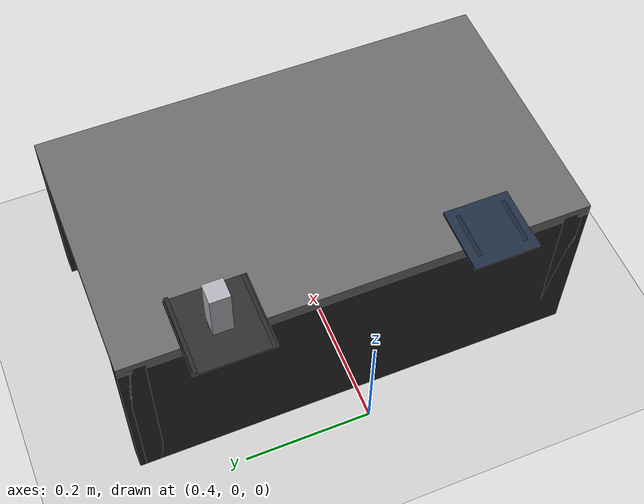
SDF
<?xml version="1.0" ?>
<sdf version="1.9">
  <world name="irb140_workcell">
    <gravity>0 0 -9.81</gravity>

    <plugin
      filename="gz-sim-physics-system"
      name="gz::sim::systems::Physics">
    </plugin>

    <plugin
      filename="gz-sim-user-commands-system"
      name="gz::sim::systems::UserCommands">
    </plugin>

    <plugin
      filename="gz-sim-scene-broadcaster-system"
      name="gz::sim::systems::SceneBroadcaster">
    </plugin>

    <light name="sun" type="directional">
      <cast_shadows>true</cast_shadows>
      <pose>0 0 10 0 0 0</pose>
      <diffuse>0.8 0.8 0.8 1</diffuse>
      <specular>0.2 0.2 0.2 1</specular>
      <direction>-0.5 0.1 -0.9</direction>
    </light>

    <model name="ground_plane">
      <static>true</static>
      <link name="link">
        <collision name="collision">
          <geometry>
            <plane>
              <normal>0 0 1</normal>
              <size>10 10</size>
            </plane>
          </geometry>
        </collision>

        <visual name="visual">
          <geometry>
            <plane>
              <normal>0 0 1</normal>
              <size>10 10</size>
            </plane>
          </geometry>
          <material>
            <ambient>0.8 0.8 0.8 1</ambient>
            <diffuse>0.8 0.8 0.8 1</diffuse>
          </material>
        </visual>
      </link>
    </model>

    <model name="workcell_table">
      <static>true</static>
      <pose>0.65 0.0 0.0 0 0 0</pose>

      <link name="table_link">
        <!-- Raised industrial shelf top.
             This collision is real in Gazebo and will be mirrored in the
             MoveIt planning scene as a simplified collision object. -->
        <collision name="shelf_top_collision">
          <pose>0 0 0.290 0 0 0</pose>
          <geometry>
            <box>
              <size>0.40 0.70 0.020</size>
            </box>
          </geometry>
        </collision>

        <visual name="shelf_top_visual">
          <pose>0 0 0.290 0 0 0</pose>
          <geometry>
            <box>
              <size>0.40 0.70 0.020</size>
            </box>
          </geometry>
          <material>
            <ambient>0.32 0.32 0.32 1</ambient>
            <diffuse>0.42 0.42 0.42 1</diffuse>
            <specular>0.18 0.18 0.18 1</specular>
          </material>
        </visual>

        <!-- Visual-only industrial support frame.
             These details make the table look like a workstation/shelf,
             but we do not add every rail as a collision object yet. -->
        <visual name="front_support_visual">
          <pose>0 -0.325 0.145 0 0 0</pose>
          <geometry>
            <box>
              <size>0.40 0.030 0.290</size>
            </box>
          </geometry>
          <material>
            <ambient>0.10 0.10 0.10 1</ambient>
            <diffuse>0.16 0.16 0.16 1</diffuse>
          </material>
        </visual>

        <visual name="back_support_visual">
          <pose>0 0.325 0.145 0 0 0</pose>
          <geometry>
            <box>
              <size>0.40 0.030 0.290</size>
            </box>
          </geometry>
          <material>
            <ambient>0.10 0.10 0.10 1</ambient>
            <diffuse>0.16 0.16 0.16 1</diffuse>
          </material>
        </visual>

        <visual name="left_support_visual">
          <pose>-0.185 0 0.145 0 0 0</pose>
          <geometry>
            <box>
              <size>0.030 0.70 0.290</size>
            </box>
          </geometry>
          <material>
            <ambient>0.10 0.10 0.10 1</ambient>
            <diffuse>0.16 0.16 0.16 1</diffuse>
          </material>
        </visual>

        <visual name="right_support_visual">
          <pose>0.185 0 0.145 0 0 0</pose>
          <geometry>
            <box>
              <size>0.030 0.70 0.290</size>
            </box>
          </geometry>
          <material>
            <ambient>0.10 0.10 0.10 1</ambient>
            <diffuse>0.16 0.16 0.16 1</diffuse>
          </material>
        </visual>
      </link>
    </model>

    <!-- Industrial input tray.
         Visual-only workcell detail. The planning scene still handles
         robot collision objects from the C++ application. -->
    <model name="input_tray_visual">
      <static>true</static>
      <pose>0.465 0.200 0.302 0 0 0</pose>

      <link name="tray_link">
        <visual name="tray_base_visual">
          <geometry>
            <box>
              <size>0.120 0.120 0.004</size>
            </box>
          </geometry>
          <material>
            <ambient>0.12 0.12 0.12 1</ambient>
            <diffuse>0.18 0.18 0.18 1</diffuse>
          </material>
        </visual>

        <visual name="tray_left_rail_visual">
          <pose>0 0.055 0.005 0 0 0</pose>
          <geometry>
            <box>
              <size>0.120 0.006 0.006</size>
            </box>
          </geometry>
          <material>
            <ambient>0.10 0.10 0.10 1</ambient>
            <diffuse>0.16 0.16 0.16 1</diffuse>
          </material>
        </visual>

        <visual name="tray_right_rail_visual">
          <pose>0 -0.055 0.0015 0 0 0</pose>
          <geometry>
            <box>
              <size>0.120 0.006 0.001</size>
            </box>
          </geometry>
          <material>
            <ambient>0.10 0.10 0.10 1</ambient>
            <diffuse>0.16 0.16 0.16 1</diffuse>
          </material>
        </visual>
      </link>
    </model>

    <!-- Stable visual workpiece only. No physical grasp/contact yet.
         The C++ app represents the carried object in the MoveIt planning scene. -->
    <model name="pick_box_visual">
      <static>true</static>
      <pose>0.465 0.200 0.345 0 0 0</pose>

      <link name="box_link">
        <visual name="workpiece_visual">
          <geometry>
            <box>
              <size>0.03 0.03 0.08</size>
            </box>
          </geometry>
          <material>
            <ambient>0.55 0.55 0.58 1</ambient>
            <diffuse>0.70 0.70 0.74 1</diffuse>
            <specular>0.25 0.25 0.25 1</specular>
          </material>
        </visual>
      </link>
    </model>

    <!-- Industrial fixture nest / process station.
         This replaces the simple green place marker visually, while keeping
         the same target area for the current pick-and-place logic. -->
    <model name="place_marker">
      <static>true</static>
      <pose>0.465 -0.200 0.302 0 0 0</pose>

      <link name="fixture_link">
        <visual name="fixture_base_visual">
          <geometry>
            <box>
              <size>0.100 0.100 0.004</size>
            </box>
          </geometry>
          <material>
            <ambient>0.08 0.12 0.18 1</ambient>
            <diffuse>0.12 0.18 0.26 1</diffuse>
            <specular>0.15 0.15 0.15 1</specular>
          </material>
        </visual>

<visual name="fixture_left_guide_visual">
          <pose>0 0.035 0.003 0 0 0</pose>
          <geometry>
            <box>
              <size>0.070 0.006 0.006</size>
            </box>
          </geometry>
          <material>
            <ambient>0.07 0.10 0.15 1</ambient>
            <diffuse>0.10 0.15 0.22 1</diffuse>
            <specular>0.15 0.15 0.15 1</specular>
          </material>
        </visual>

        <visual name="fixture_right_guide_visual">
          <pose>0 -0.035 0.003 0 0 0</pose>
          <geometry>
            <box>
              <size>0.070 0.006 0.006</size>
            </box>
          </geometry>
          <material>
            <ambient>0.07 0.10 0.15 1</ambient>
            <diffuse>0.10 0.15 0.22 1</diffuse>
            <specular>0.15 0.15 0.15 1</specular>
          </material>
        </visual>
      </link>
    </model>

  </world>
</sdf>
